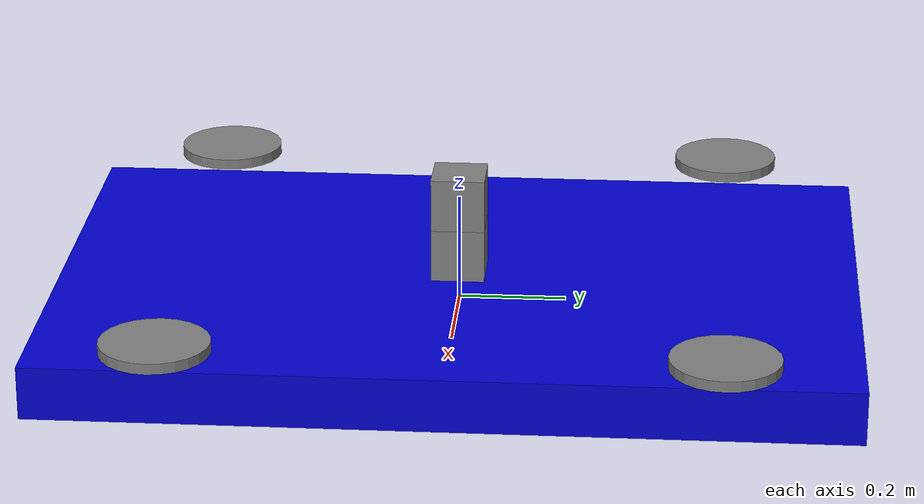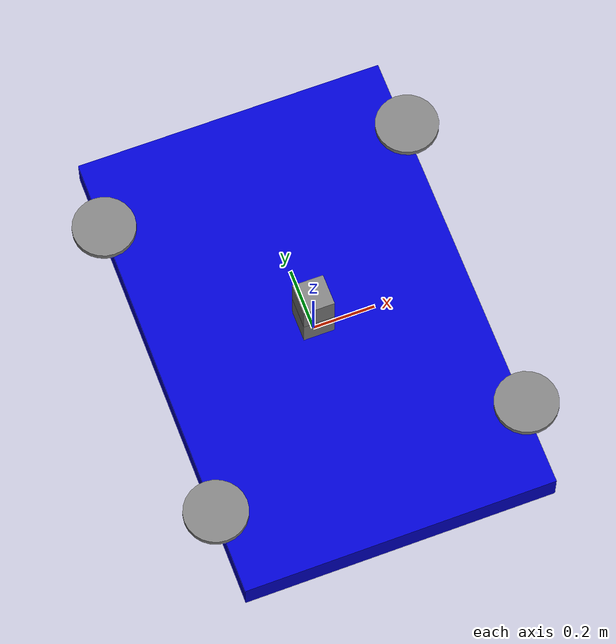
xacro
<?xml version="1.0"?>
<robot name="common_drone" xmlns:xacro="http://www.ros.org/wiki/xacro">

<!-- Colors -->
<material name="Blue">
<color rgba="0.0 0.0 0.8 1.0"/>
</material>

<material name="Gray">
<color rgba="0.5 0.5 0.5 1.0"/>
</material>

<!-- Base Link -->
<link name="base_link">
<visual>
  <geometry>
    <box size="1.0 1.5 0.1"/>
  </geometry>
  <material name="Blue"/>
</visual>
<collision>
  <geometry>
    <box size="1.0 1.5 0.1"/>
  </geometry>
</collision>
<inertial>
  <mass value="5.0"/>
  <origin xyz="0 0 0"/>
  <inertia ixx="0.5" ixy="0.0" ixz="0.0" iyy="0.5" iyz="0.0" izz="0.5"/>
</inertial>
</link>

<!-- Propellers -->
<xacro:macro name="propeller" params="name x y z">
<link name="${name}">
  <visual>
    <geometry>
      <cylinder radius="0.1" length="0.02"/>
    </geometry>
    <material name="Gray"/>
  </visual>
  <collision>
    <geometry>
      <cylinder radius="0.1" length="0.02"/>
    </geometry>
  </collision>
  <inertial>
    <mass value="0.1"/>
    <origin xyz="0 0 0"/>
    <inertia ixx="0.01" ixy="0.0" ixz="0.0" iyy="0.01" iyz="0.0" izz="0.01"/>
  </inertial>
</link>
<joint name="${name}_joint" type="fixed">
  <parent link="base_link"/>
  <child link="${name}"/>
  <origin xyz="${x} ${y} ${z}"/>
</joint>
</xacro:macro>

<xacro:propeller name="propeller_front_left" x="0.5" y="0.5" z="0.1"/>
<xacro:propeller name="propeller_front_right" x="0.5" y="-0.5" z="0.1"/>
<xacro:propeller name="propeller_back_left" x="-0.5" y="0.5" z="0.1"/>
<xacro:propeller name="propeller_back_right" x="-0.5" y="-0.5" z="0.1"/>

<!-- Sensors -->
<!-- GPS -->
<link name="gps_link">
<visual>
  <geometry>
    <box size="0.1 0.1 0.1"/>
  </geometry>
  <material name="Gray"/>
</visual>
</link>
<joint name="gps_joint" type="fixed">
<parent link="base_link"/>
<child link="gps_link"/>
<origin xyz="0 0 0.2"/>
</joint>
<gazebo>
<plugin name="gps_plugin" filename="libgazebo_ros_gps.so">
  <alwaysOn>true</alwaysOn>
  <updateRate>10</updateRate>
  <robotNamespace>/drone</robotNamespace>
  <topicName>gps</topicName>
  <frameName>gps_link</frameName>
</plugin>
</gazebo>

<!-- Sonar -->
<link name="sonar_link">
<visual>
  <geometry>
    <cylinder radius="0.05" length="0.1"/>
  </geometry>
  <material name="Gray"/>
</visual>
</link>
<joint name="sonar_joint" type="fixed">
<parent link="base_link"/>
<child link="sonar_link"/>
<origin xyz="0 0 0.1"/>
</joint>
<gazebo>
<plugin name="sonar_plugin" filename="libgazebo_ros_range.so">
  <alwaysOn>true</alwaysOn>
  <updateRate>10</updateRate>
  <robotNamespace>/drone</robotNamespace>
  <topicName>sonar</topicName>
  <frameName>sonar_link</frameName>
  <radiation>ultrasound</radiation>
  <fov>0.5</fov>
  <minRange>0.2</minRange>
  <maxRange>10.0</maxRange>
</plugin>
</gazebo>

<!-- Compass -->
<link name="compass_link">
<visual>
  <geometry>
    <box size="0.05 0.05 0.05"/>
  </geometry>
  <material name="Gray"/>
</visual>
</link>
<joint name="compass_joint" type="fixed">
<parent link="base_link"/>
<child link="compass_link"/>
<origin xyz="0 0 0.15"/>
</joint>
<gazebo>
<plugin name="compass_plugin" filename="libgazebo_ros_imu.so">
  <alwaysOn>true</alwaysOn>
  <updateRate>10</updateRate>
  <robotNamespace>/drone</robotNamespace>
  <topicName>compass</topicName>
  <frameName>compass_link</frameName>
</plugin>
</gazebo>

<!-- IMU -->
<link name="imu_link">
<visual>
  <geometry>
    <box size="0.1 0.1 0.1"/>
  </geometry>
  <material name="Gray"/>
</visual>
</link>
<joint name="imu_joint" type="fixed">
<parent link="base_link"/>
<child link="imu_link"/>
<origin xyz="0 0 0.1"/>
</joint>
<gazebo>
<plugin name="imu_plugin" filename="libgazebo_ros_imu.so">
  <alwaysOn>true</alwaysOn>
  <updateRate>10</updateRate>
  <robotNamespace>/drone</robotNamespace>
  <topicName>imu</topicName>
  <frameName>imu_link</frameName>
</plugin>
</gazebo>

<!-- Downward-Facing Camera -->
<link name="camera_link">
<visual>
  <geometry>
    <box size="0.1 0.1 0.1"/>
  </geometry>
  <material name="Gray"/>
</visual>
</link>
<joint name="camera_joint" type="fixed">
<parent link="base_link"/>
<child link="camera_link"/>
<origin xyz="0 0 -0.1"/>
</joint>
<gazebo reference="camera_link">
<sensor name="camera" type="camera">
  <pose>0 0 0 0 1.5708 0</pose> <!-- 90 degrees rotation to look downwards -->
  <visualize>true</visualize>
  <update_rate>30</update_rate>
  <camera>
    <horizontal_fov>1.047</horizontal_fov>
    <image>
      <width>640</width>
      <height>480</height>
      <format>R8G8B8</format>
    </image>
    <clip>
      <near>0.1</near>
      <far>100</far>
    </clip>
  </camera>
  <plugin name="camera_controller" filename="libgazebo_ros_camera.so">
    <alwaysOn>true</alwaysOn>
    <updateRate>30</updateRate>
    <cameraName>downward_camera</cameraName>
    <frameName>camera_link</frameName>
    <robotNamespace>/drone</robotNamespace>
    <imageTopicName>camera/image_raw</imageTopicName>
    <cameraInfoTopicName>camera/camera_info</cameraInfoTopicName>
  </plugin>
</sensor>
</gazebo>

<!-- Gazebo Plugin for Position Publishing -->
<gazebo>
<plugin name="p3d_base_controller" filename="libgazebo_ros_p3d.so">
  <alwaysOn>true</alwaysOn>
  <updateRate>10</updateRate>
  <bodyName>base_link</bodyName>
  <topicName>ground_truth/state</topicName>
  <frameName>world</frameName>
</plugin>
</gazebo>

</robot>
